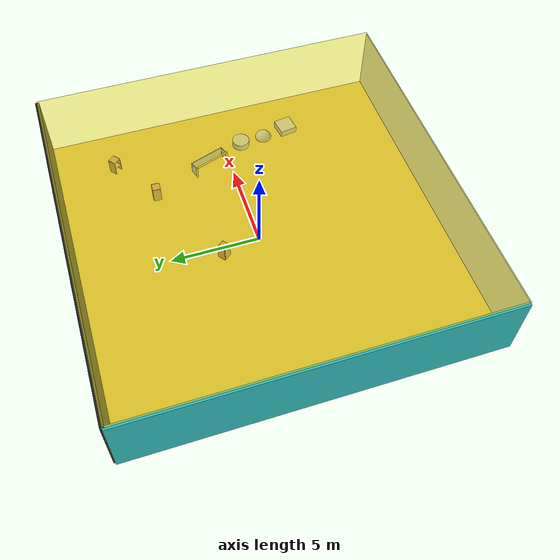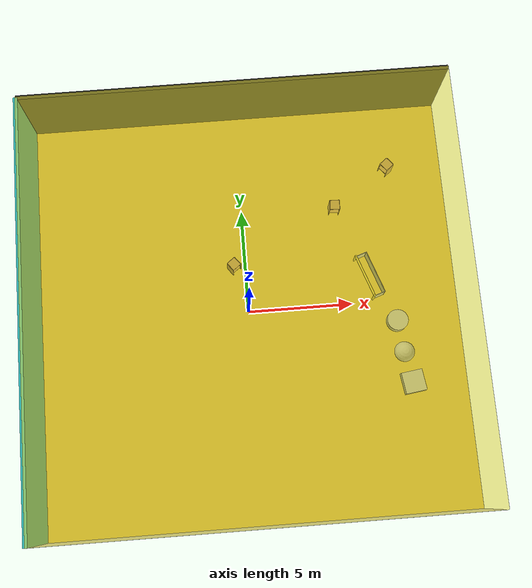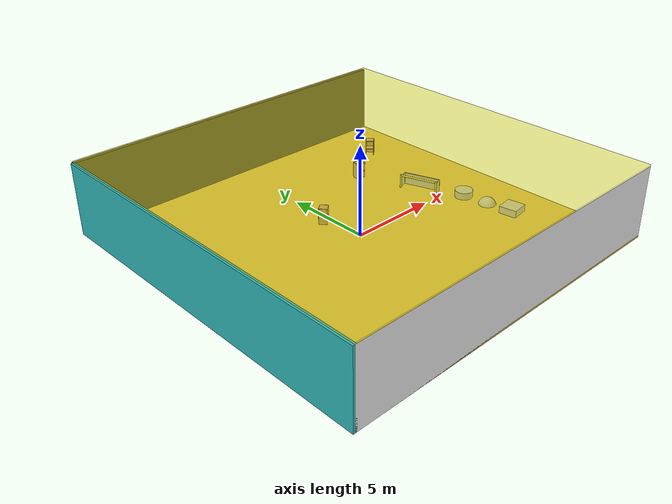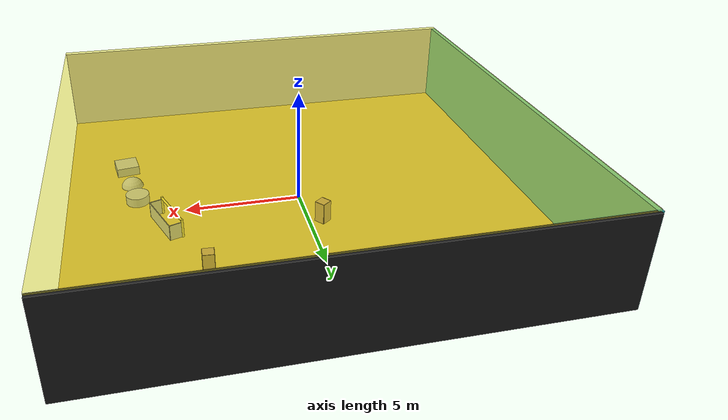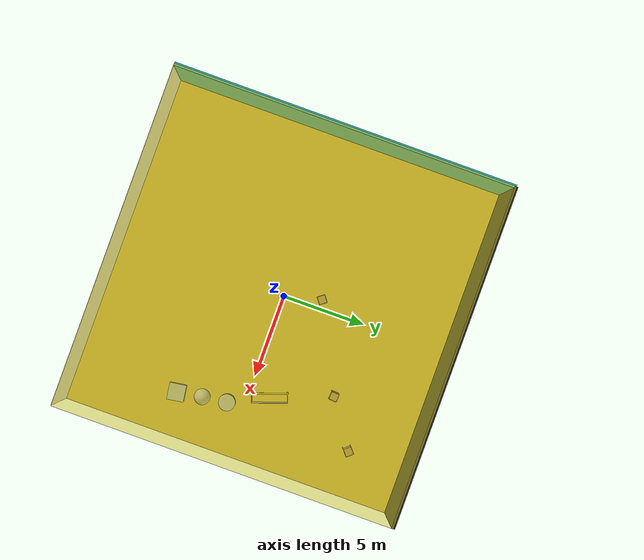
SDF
<sdf version="1.4">
 <world name="default">
  <physics type="ode">
   <max_step_size>0.001</max_step_size>
   <real_time_factor>1</real_time_factor>
   <real_time_update_rate>1000</real_time_update_rate>
   <gravity>0 0 -9.8</gravity>
  </physics>
  <scene><ambient>0.4 0.4 0.4 1</ambient><background>0.7 0.7 0.7 1</background><shadows>1</shadows></scene>
  <model name="Surrounding">
   <static>1</static>
   <link name="Ceiling">
    <collision name="Ceiling_Collision"><geometry><box><size>20 20 0.1</size></box></geometry></collision>
    <visual name="Ceiling_Visual">
     <geometry><box><size>20 20 0.1</size></box></geometry>
     <material>
      <script>
       <uri>file://media/materials/scripts/gazebo.material</uri>
       <name>Gazebo/YellowTransparent</name>
      </script>
     </material>
    </visual>
    <pose>0 0 4.05 0 0 0</pose>
   </link>
   <link name="Wall_South">
    <collision name="Wall_South_Collision">
     <geometry><box><size>20 0 4</size></box></geometry>
     <pose>0 0 2 0 -0 0</pose>
    </collision>
    <visual name="Wall_South_Visual">
     <pose>0 0 2 0 -0 0</pose>
     <geometry><box><size>20 0 4</size></box></geometry>
     <material>
      <script><uri>file://media/materials/scripts/gazebo.material</uri><name>Gazebo/White</name></script>
     </material>
    </visual>
    <velocity_decay><linear>0</linear><angular>0</angular></velocity_decay>
    <pose>0 -10 0 0 -0 0</pose>
   </link>
   <link name="Wall_East">
    <collision name="Wall_21_Collision">
     <geometry><box><size>20 0 4</size></box></geometry>
     <pose>0 0 2 0 -0 0</pose>
    </collision>
    <visual name="Wall_21_Visual">
     <pose>0 0 2 0 -0 0</pose>
     <geometry><box><size>20 0 4</size></box></geometry>
     <material>
      <script><uri>file://media/materials/scripts/gazebo.material</uri><name>Gazebo/GreenTransparent</name></script>
     </material>
    </visual>
    <velocity_decay><linear>0</linear><angular>0</angular></velocity_decay>
    <pose>10 0 0 0 -0 1.5708</pose>
   </link>
   <link name="Wall_North">
    <collision name="Wall_22_Collision">
     <geometry><box><size>20 0.2 4</size></box></geometry>
     <pose>0 0 2 0 -0 0</pose>
    </collision>
    <visual name="Wall_22_Visual">
     <pose>0 0 2 0 -0 0</pose>
     <geometry><box><size>20 0.2 4</size></box></geometry>
     <material>
      <script><uri>file://media/materials/scripts/gazebo.material</uri><name>Gazebo/Black</name></script>
     </material>
    </visual>
    <velocity_decay><linear>0</linear><angular>0</angular></velocity_decay>
    <pose>0 10 0 0 -0 0</pose>
   </link>
   <link name="Wall_West">
    <collision name="Wall_23_Collision">
     <geometry><box><size>20 0.2 4</size></box></geometry>
     <pose>0 0 2 0 -0 0</pose>
    </collision>
    <visual name="Wall_23_Visual">
     <pose>0 0 2 0 -0 0</pose>
     <geometry><box><size>20 0.2 4</size></box></geometry>
     <material>
      <script><uri>file://media/materials/scripts/gazebo.material</uri><name>Gazebo/Turquoise</name></script>
     </material>
    </visual>
    <velocity_decay><linear>0</linear><angular>0</angular></velocity_decay>
    <pose>-10 0 0 0 0 -1.5708</pose>
   </link>
   <link name="Ground_link">
    <collision name="collision">
     <pose>0 0 .05 0 -0 0</pose>
     <geometry><box><size>20 20 0.1</size></box></geometry>
    </collision>
    <visual name="visual">
     <pose>0 0 .05 0 -0 0</pose>
     <geometry><box><size>20 20 0.1</size></box></geometry>
     <material>
      <script><uri>file://media/materials/scripts/gazebo.material</uri><name>Gazebo/Gold</name></script>
     </material>
    </visual>
   </link>
   <static>1</static>
  </model>
  <spherical_coordinates>
   <surface_model>EARTH_WGS84</surface_model>
   <latitude_deg>0</latitude_deg>
   <longitude_deg>0</longitude_deg>
   <elevation>0</elevation>
   <heading_deg>0</heading_deg>
  </spherical_coordinates>
  <light name="lightball_0" type="diffuse">
   <diffuse>0.8 0.8 0.8 1</diffuse>
   <specular>0.2 0.2 0.2 1</specular>
   <attenuation>
    <range>100</range>
    <constant>0.7</constant>
    <linear>0.01</linear>
    <quadratic>0.001</quadratic>
   </attenuation>
   <direction>-0.5 0.1 -0.9</direction>
   <pose>3.76099392401 6.13280385775 3.60816949315 0 0 0</pose>
  </light>
  <light name="lightball_1" type="diffuse">
   <diffuse>0.8 0.8 0.8 1</diffuse>
   <specular>0.2 0.2 0.2 1</specular>
   <attenuation>
    <range>100</range>
    <constant>0.7</constant>
    <linear>0.01</linear>
    <quadratic>0.001</quadratic>
   </attenuation>
   <direction>-0.5 0.1 -0.9</direction>
   <pose>-2.79955395844 -5.74730744276 2.30974409557 0 0 0</pose>
  </light>
  <light name="lightball_2" type="diffuse">
   <diffuse>0.8 0.8 0.8 1</diffuse>
   <specular>0.2 0.2 0.2 1</specular>
   <attenuation>
    <range>100</range>
    <constant>0.7</constant>
    <linear>0.01</linear>
    <quadratic>0.001</quadratic>
   </attenuation>
   <direction>-0.5 0.1 -0.9</direction>
   <pose>-3.83028164011 -2.12636755194 2.15471617277 0 0 0</pose>
  </light>
  <light name="lightball_3" type="diffuse">
   <diffuse>0.8 0.8 0.8 1</diffuse>
   <specular>0.2 0.2 0.2 1</specular>
   <attenuation>
    <range>100</range>
    <constant>0.7</constant>
    <linear>0.01</linear>
    <quadratic>0.001</quadratic>
   </attenuation>
   <direction>-0.5 0.1 -0.9</direction>
   <pose>-1.83401886009 7.59630795792 1.97635553932 0 0 0</pose>
  </light>
  <light name="lightball_4" type="diffuse">
   <diffuse>0.8 0.8 0.8 1</diffuse>
   <specular>0.2 0.2 0.2 1</specular>
   <attenuation>
    <range>100</range>
    <constant>0.7</constant>
    <linear>0.01</linear>
    <quadratic>0.001</quadratic>
   </attenuation>
   <direction>-0.5 0.1 -0.9</direction>
   <pose>-1.96044266229 -0.103328853525 1.16922226716 0 0 0</pose>
  </light>
  <light name="lightball_5" type="diffuse">
   <diffuse>0.8 0.8 0.8 1</diffuse>
   <specular>0.2 0.2 0.2 1</specular>
   <attenuation>
    <range>100</range>
    <constant>0.7</constant>
    <linear>0.01</linear>
    <quadratic>0.001</quadratic>
   </attenuation>
   <direction>-0.5 0.1 -0.9</direction>
   <pose>0.393054213122 -5.57335486567 2.19252905743 0 0 0</pose>
  </light>
  <include><uri>model://cabinet</uri><pose>-0.552628653503 2.16238980883 0 0 0 2.22726501883</pose></include>
  <include>
   <uri>model://robocup_3Dsim_goal</uri>
   <pose>5.61932310108 1.1422478783 0 0 0 0.33402527015</pose>
  </include>
  <include><uri>model://cabinet</uri><pose>4.50381376712 4.72163743539 0 0 0 1.51102002962</pose></include>
  <include>
   <uri>model://textured_shapes</uri>
   <pose>7.20557447089 -2.51188786032 0 0 0 0.142592906434</pose>
  </include>
  <include><uri>model://cabinet</uri><pose>7.22781063106 6.59042138975 0 0 0 0.700190019162</pose></include>
 </world>
</sdf>

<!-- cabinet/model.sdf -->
<sdf version="1.5">
  <model name="cabinet">
    <static>true</static>
    <link name="cabinet_bottom_plate">
      <inertial>
        <pose>0 0 -1 0 0 0</pose>
        <inertia>
          <ixx>2.050000</ixx>
          <ixy>0</ixy>
          <ixz>0</ixz>
          <iyy>2.050000</iyy>
          <iyz>0</iyz>
          <izz>2.050000</izz>
        </inertia>
        <mass>25.000000</mass>
      </inertial>
      <collision name="cabinet_bottom_plate_geom">
        <pose>0 0 0.010000 0 0 0</pose>
        <geometry>
          <box>
            <size>0.450000 0.450000 0.020000</size>
          </box>
        </geometry>
      </collision>
      <visual name="cabinet_bottom_plate_geom_visual">
        <pose>0 0 0.010000 0 0 0</pose>
        <geometry>
          <box>
            <size>0.450000 0.450000 0.020000</size>
          </box>
        </geometry>
        <material>
          <script>
            <uri>model://media/materials/scripts/gazebo.material</uri>
            <name>Gazebo/Wood</name>
          </script>
        </material>
      </visual>
      <collision name="cabinet_bottom_plate_geom_cabinet_back_plate">
        <pose>0.235000 0 0.510000 0 0 0</pose>
        <geometry>
          <box>
            <size>0.020000 0.450000 1.020000</size>
          </box>
        </geometry>
      </collision>
      <visual name="cabinet_bottom_plate_geom_cabinet_back_plate_visual">
        <pose>0.235000 0 0.510000 0 0 0</pose>
        <geometry>
          <box>
            <size>0.020000 0.450000 1.020000</size>
          </box>
        </geometry>
        <material>
          <script>
            <uri>model://media/materials/scripts/gazebo.material</uri>
            <name>Gazebo/Wood</name>
          </script>
        </material>
      </visual>
      <collision name="cabinet_bottom_plate_geom_cabinet_left_plate">
        <pose>0 0.235000 0.510000 0 0 0</pose>
        <geometry>
          <box>
            <size>0.450000 0.020000 1.020000</size>
          </box>
        </geometry>
      </collision>
      <visual name="cabinet_bottom_plate_geom_cabinet_left_plate_visual">
        <pose>0 0.235000 0.510000 0 0 0</pose>
        <geometry>
          <box>
            <size>0.450000 0.020000 1.020000</size>
          </box>
        </geometry>
        <material>
          <script>
            <uri>model://media/materials/scripts/gazebo.material</uri>
            <name>Gazebo/Wood</name>
          </script>
        </material>
      </visual>
      <collision name="cabinet_bottom_plate_geom_cabinet_middle_plate">
        <pose>0 0 0.510000 0 0 0</pose>
        <geometry>
          <box>
            <size>0.450000 0.450000 0.020000</size>
          </box>
        </geometry>
      </collision>
      <visual name="cabinet_bottom_plate_geom_cabinet_middle_plate_visual">
        <pose>0 0 0.510000 0 0 0</pose>
        <geometry>
          <box>
            <size>0.450000 0.450000 0.020000</size>
          </box>
        </geometry>
        <material>
          <script>
            <uri>model://media/materials/scripts/gazebo.material</uri>
            <name>Gazebo/Wood</name>
          </script>
        </material>
      </visual>
      <collision name="cabinet_bottom_plate_geom_cabinet_right_plate">
        <pose>0 -0.235000 0.510000 0 0 0</pose>
        <geometry>
          <box>
            <size>0.450000 0.020000 1.020000</size>
          </box>
        </geometry>
      </collision>
      <visual name="cabinet_bottom_plate_geom_cabinet_right_plate_visual">
        <pose>0 -0.235000 0.510000 0 0 0</pose>
        <geometry>
          <box>
            <size>0.450000 0.020000 1.020000</size>
          </box>
        </geometry>
        <material>
          <script>
            <uri>model://media/materials/scripts/gazebo.material</uri>
            <name>Gazebo/Wood</name>
          </script>
        </material>
      </visual>
      <collision name="cabinet_bottom_plate_geom_cabinet_top_plate">
        <pose>0 0 1.010000 0 0 0</pose>
        <geometry>
          <box>
            <size>0.450000 0.450000 0.020000</size>
          </box>
        </geometry>
      </collision>
      <visual name="cabinet_bottom_plate_geom_cabinet_top_plate_visual">
        <pose>0 0 1.010000 0 0 0</pose>
        <geometry>
          <box>
            <size>0.450000 0.450000 0.020000</size>
          </box>
        </geometry>
        <material>
          <script>
            <uri>model://media/materials/scripts/gazebo.material</uri>
            <name>Gazebo/Wood</name>
          </script>
        </material>
      </visual>
    </link>
  </model>
</sdf>

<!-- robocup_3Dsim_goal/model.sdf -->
<sdf version="1.5">
  <model name="robocup_3d_goal">
    <static>true</static>
    <link name="left_post">
      <pose>0 1.05 0.45 0 0 0</pose>
      <collision name="collision">
        <geometry>
          <cylinder>
            <radius>0.05</radius>
            <length>0.9</length>
          </cylinder>
        </geometry>
      </collision>
      <visual name="visual">
        <geometry>
          <cylinder>
            <radius>0.05</radius>
            <length>0.9</length>
          </cylinder>
        </geometry>
        <material>
          <script>
            <uri>file://media/materials/scripts/gazebo.material</uri>
            <name>Gazebo/ZincYellow</name>
          </script>
        </material>
      </visual>
    </link>
    <link name="left_support_horiz_lower">
      <pose>0.30 1.05 0.01 0 0 0</pose>
      <collision name="collision">
        <geometry>
          <box>
            <size>0.50 0.02 0.02</size>
          </box>
        </geometry>
      </collision>
      <visual name="visual">
        <geometry>
          <box>
            <size>0.50 0.02 0.02</size>
          </box>
        </geometry>
        <material>
          <script>
            <uri>file://media/materials/scripts/gazebo.material</uri>
            <name>Gazebo/White</name>
          </script>
        </material>
      </visual>
    </link>
    <link name="left_support_horiz_upper">
      <pose>0.30 1.05 0.79 0 0 0</pose>
      <collision name="collision">
        <geometry>
          <box>
            <size>0.50 0.02 0.02</size>
          </box>
        </geometry>
      </collision>
      <visual name="visual">
        <geometry>
          <box>
            <size>0.50 0.02 0.02</size>
          </box>
        </geometry>
        <material>
          <script>
            <uri>file://media/materials/scripts/gazebo.material</uri>
            <name>Gazebo/White</name>
          </script>
        </material>
      </visual>
    </link>
    <link name="left_support_vertical">
      <pose>0.56 1.05 0.4 0 1.5708 0</pose>
      <collision name="collision">
        <geometry>
          <box>
            <size>0.80 0.02 0.02</size>
          </box>
        </geometry>
      </collision>
      <visual name="visual">
        <geometry>
          <box>
            <size>0.80 0.02 0.02</size>
          </box>
        </geometry>
        <material>
          <script>
            <uri>file://media/materials/scripts/gazebo.material</uri>
            <name>Gazebo/White</name>
          </script>
        </material>
      </visual>
    </link>
    <link name="right_support_horiz_lower">
      <pose>0.30 -1.05 0.01 0 0 0</pose>
      <collision name="collision">
        <geometry>
          <box>
            <size>0.50 0.02 0.02</size>
          </box>
        </geometry>
      </collision>
      <visual name="visual">
        <geometry>
          <box>
            <size>0.50 0.02 0.02</size>
          </box>
        </geometry>
        <material>
          <script>
            <uri>file://media/materials/scripts/gazebo.material</uri>
            <name>Gazebo/White</name>
          </script>
        </material>
      </visual>
    </link>
    <link name="right_support_horiz_upper">
      <pose>0.30 -1.05 0.79 0 0 0</pose>
      <collision name="collision">
        <geometry>
          <box>
            <size>0.50 0.02 0.02</size>
          </box>
        </geometry>
      </collision>
      <visual name="visual">
        <geometry>
          <box>
            <size>0.50 0.02 0.02</size>
          </box>
        </geometry>
        <material>
          <script>
            <uri>file://media/materials/scripts/gazebo.material</uri>
            <name>Gazebo/White</name>
          </script>
        </material>
      </visual>
    </link>
    <link name="right_support_vertical">
      <pose>0.56 -1.05 0.4 0 1.5708 0</pose>
      <collision name="collision">
        <geometry>
          <box>
            <size>0.80 0.02 0.02</size>
          </box>
        </geometry>
      </collision>
      <visual name="visual">
        <geometry>
          <box>
            <size>0.80 0.02 0.02</size>
          </box>
        </geometry>
        <material>
          <script>
            <uri>file://media/materials/scripts/gazebo.material</uri>
            <name>Gazebo/White</name>
          </script>
        </material>
      </visual>
    </link>
    <link name="center_support_horiz_lower">
      <pose>0.56 0 0.01 0 1.5708 0</pose>
      <collision name="collision">
        <geometry>
          <box>
            <size>0.02 2.08 0.02</size>
          </box>
        </geometry>
      </collision>
      <visual name="visual">
        <geometry>
          <box>
            <size>0.02 2.08 0.02</size>
          </box>
        </geometry>
        <material>
          <script>
            <uri>file://media/materials/scripts/gazebo.material</uri>
            <name>Gazebo/White</name>
          </script>
        </material>
      </visual>
    </link>
    <link name="center_support_horiz_upper">
      <pose>0.56 0 0.79 0 1.5708 0</pose>
      <collision name="collision">
        <geometry>
          <box>
            <size>0.02 2.08 0.02</size>
          </box>
        </geometry>
      </collision>
      <visual name="visual">
        <geometry>
          <box>
            <size>0.02 2.08 0.02</size>
          </box>
        </geometry>
        <material>
          <script>
            <uri>file://media/materials/scripts/gazebo.material</uri>
            <name>Gazebo/White</name>
          </script>
        </material>
      </visual>
    </link>
    <link name="right_post">
      <pose>0 -1.05 0.45 0 0 0</pose>
      <collision name="collision">
        <geometry>
          <cylinder>
            <radius>0.05</radius>
            <length>0.9</length>
          </cylinder>
        </geometry>
      </collision>
      <visual name="visual">
        <geometry>
          <cylinder>
            <radius>0.05</radius>
            <length>0.9</length>
          </cylinder>
        </geometry>
        <material>
          <script>
            <uri>file://media/materials/scripts/gazebo.material</uri>
            <name>Gazebo/ZincYellow</name>
          </script>
        </material>
      </visual>
    </link>
    <link name="crossbar">
      <pose>0 0 0.85 1.57 1.57 0</pose>
      <collision name="collision">
        <geometry>
          <cylinder>
            <radius>0.05</radius>
            <length>2.0</length>
          </cylinder>
        </geometry>
      </collision>
      <visual name="visual">
        <geometry>
          <cylinder>
            <radius>0.05</radius>
            <length>2.0</length>
          </cylinder>
        </geometry>
        <material>
          <script>
            <uri>file://media/materials/scripts/gazebo.material</uri>
            <name>Gazebo/ZincYellow</name>
          </script>
        </material>
      </visual>
    </link>
    <link name="center_net">
      <pose>0.56 0 0.40 0 0 0</pose>
      <collision name="collision">
        <geometry>
          <box>
            <size>0.01 2.1 0.80</size>
          </box>
        </geometry>
      </collision>
      <visual name="visual">
        <geometry>
          <box>
            <size>0.01 2.1 0.80</size>
          </box>
        </geometry>
        <material>
          <script>
            <uri>model://../model_source/models/robocup09_spl_field/materials/scripts/</uri>
            <uri>model://../model_source/models/robocup09_spl_field/materials/textures/</uri>
            <name>RoboCup/Net</name>
          </script>
        </material>
      </visual>
    </link>
    <link name="left_net">
      <pose>0.30 1.05 0.40 0 0 0</pose>
      <collision name="collision">
        <geometry>
          <box>
            <size>0.50 0.01 0.76</size>
          </box>
        </geometry>
      </collision>
      <visual name="visual">
        <geometry>
          <box>
            <size>0.50 0.01 0.76</size>
          </box>
        </geometry>
        <material>
          <script>
            <uri>model://../model_source/models/robocup09_spl_field/materials/scripts/</uri>
            <uri>model://../model_source/models/robocup09_spl_field/materials/textures/</uri>
            <name>RoboCup/Net</name>
          </script>
        </material>
      </visual>
    </link>
    <link name="right_net">
      <pose>0.30 -1.05 0.40 0 0 0</pose>
      <collision name="collision">
        <geometry>
          <box>
            <size>0.50 0.01 0.76</size>
          </box>
        </geometry>
      </collision>
      <visual name="visual">
        <geometry>
          <box>
            <size>0.50 0.01 0.76</size>
          </box>
        </geometry>
        <material>
          <script>
            <uri>model://../model_source/models/robocup09_spl_field/materials/scripts/</uri>
            <uri>model://../model_source/models/robocup09_spl_field/materials/textures/</uri>
            <name>RoboCup/Net</name>
          </script>
        </material>
      </visual>
    </link>
  </model>
</sdf>

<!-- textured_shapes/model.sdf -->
<sdf version="1.6">
  <model name="textured_shapes">
    <pose>0 0 0.5 0 0 0</pose>
    <link name="box">
      <pose>0 -1.5 0 0 0 0</pose>
      <collision name="collision">
        <geometry>
          <box>
            <size>1 1 1</size>
          </box>
        </geometry>
      </collision>
      <visual name="visual">
        <geometry>
          <box>
            <size>1 1 1</size>
          </box>
        </geometry>
        <material>
          <script>
            <uri>model://../model_source/models/textured_shapes/materials/scripts</uri>
            <uri>model://../model_source/models/textured_shapes/materials/textures</uri>
            <name>TexturedShape/Squares</name>
          </script>
        </material>
      </visual>
    </link>
    <link name="sphere">
      <collision name="collision">
        <geometry>
          <sphere>
            <radius>0.5</radius>
          </sphere>
        </geometry>
      </collision>
      <visual name="visual">
        <geometry>
          <sphere>
            <radius>0.5</radius>
          </sphere>
        </geometry>
        <material>
          <script>
            <uri>model://../model_source/models/textured_shapes/materials/scripts</uri>
            <uri>model://../model_source/models/textured_shapes/materials/textures</uri>
            <name>TexturedShape/Squares</name>
          </script>
        </material>
      </visual>
    </link>
    <link name="cylinder">
      <pose>0 1.5 0 0 0 0</pose>
      <collision name="collision">
        <geometry>
          <cylinder>
            <radius>0.5</radius>
            <length>1</length>
          </cylinder>
        </geometry>
      </collision>
      <visual name="visual">
        <geometry>
          <cylinder>
            <radius>0.5</radius>
            <length>1</length>
          </cylinder>
        </geometry>
        <material>
          <script>
            <uri>model://../model_source/models/textured_shapes/materials/scripts</uri>
            <uri>model://../model_source/models/textured_shapes/materials/textures</uri>
            <name>TexturedShape/Squares</name>
          </script>
        </material>
      </visual>
    </link>
  </model>
</sdf>
